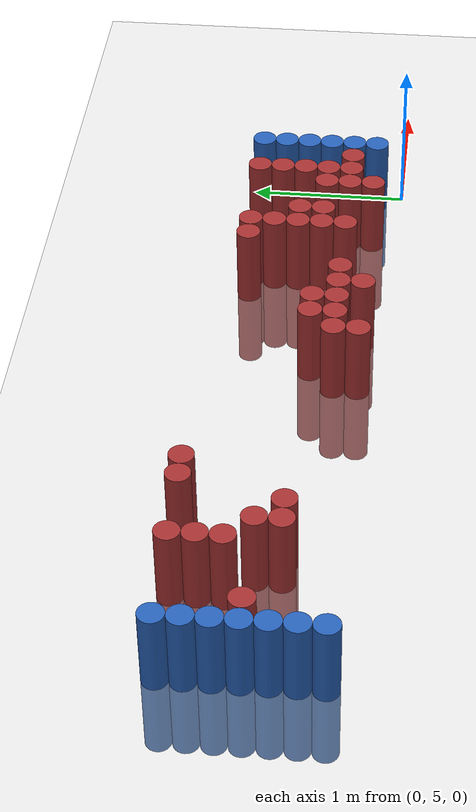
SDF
<sdf version="1.6">
 <world name="default">
  <model name="ground_plane">
   <static>1</static>
   <link name="link">
    <collision name="collision">
     <geometry><plane><normal>0 0 1</normal><size>100 100</size></plane></geometry>
     <surface><friction><ode><mu>100</mu><mu2>50</mu2></ode></friction></surface>
    </collision>
    <visual name="visual">
     <cast_shadows>0</cast_shadows>
     <geometry><plane><normal>0 0 1</normal><size>100 100</size></plane></geometry>
     <material>
      <script><uri>file://media/materials/scripts/gazebo.material</uri><name>Gazebo/Grey</name></script>
     </material>
    </visual>
   </link>
  </model>
  <model name="unit_cylinder_96">
   <static>1</static>
   <pose>-4.425000 5.175000 0.000000 0.000000 0.000000 0.000000</pose>
   <link name="link">
    <inertial>
     <mass>1</mass>
     <inertia><ixx>0.145833</ixx><ixy>0</ixy><ixz>0</ixz><iyy>0.145833</iyy><iyz>0</iyz><izz>0.125</izz></inertia>
    </inertial>
    <collision name="collision">
     <geometry><cylinder><radius>0.075000</radius><length>1</length></cylinder></geometry>
    </collision>
    <visual name="visual">
     <geometry><cylinder><radius>0.075000</radius><length>1</length></cylinder></geometry>
     <material>
      <ambient>0.152000 0.379000 0.720000 1</ambient>
      <diffuse>0.152000 0.379000 0.720000 1</diffuse>
     </material>
     <material>
      <script><name>Gazebo/Grey</name><uri>file://media/materials/scripts/gazebo.material</uri></script>
     </material>
    </visual>
   </link>
  </model>
  <model name="unit_cylinder_97">
   <static>1</static>
   <pose>-4.425000 5.325000 0.000000 0.000000 0.000000 0.000000</pose>
   <link name="link">
    <inertial>
     <mass>1</mass>
     <inertia><ixx>0.145833</ixx><ixy>0</ixy><ixz>0</ixz><iyy>0.145833</iyy><iyz>0</iyz><izz>0.125</izz></inertia>
    </inertial>
    <collision name="collision">
     <geometry><cylinder><radius>0.075000</radius><length>1</length></cylinder></geometry>
    </collision>
    <visual name="visual">
     <geometry><cylinder><radius>0.075000</radius><length>1</length></cylinder></geometry>
     <material>
      <ambient>0.152000 0.379000 0.720000 1</ambient>
      <diffuse>0.152000 0.379000 0.720000 1</diffuse>
     </material>
     <material>
      <script><name>Gazebo/Grey</name><uri>file://media/materials/scripts/gazebo.material</uri></script>
     </material>
    </visual>
   </link>
  </model>
  <model name="unit_cylinder_98">
   <static>1</static>
   <pose>-4.425000 5.475000 0.000000 0.000000 0.000000 0.000000</pose>
   <link name="link">
    <inertial>
     <mass>1</mass>
     <inertia><ixx>0.145833</ixx><ixy>0</ixy><ixz>0</ixz><iyy>0.145833</iyy><iyz>0</iyz><izz>0.125</izz></inertia>
    </inertial>
    <collision name="collision">
     <geometry><cylinder><radius>0.075000</radius><length>1</length></cylinder></geometry>
    </collision>
    <visual name="visual">
     <geometry><cylinder><radius>0.075000</radius><length>1</length></cylinder></geometry>
     <material>
      <ambient>0.152000 0.379000 0.720000 1</ambient>
      <diffuse>0.152000 0.379000 0.720000 1</diffuse>
     </material>
     <material>
      <script><name>Gazebo/Grey</name><uri>file://media/materials/scripts/gazebo.material</uri></script>
     </material>
    </visual>
   </link>
  </model>
  <model name="unit_cylinder_99">
   <static>1</static>
   <pose>-4.425000 5.625000 0.000000 0.000000 0.000000 0.000000</pose>
   <link name="link">
    <inertial>
     <mass>1</mass>
     <inertia><ixx>0.145833</ixx><ixy>0</ixy><ixz>0</ixz><iyy>0.145833</iyy><iyz>0</iyz><izz>0.125</izz></inertia>
    </inertial>
    <collision name="collision">
     <geometry><cylinder><radius>0.075000</radius><length>1</length></cylinder></geometry>
    </collision>
    <visual name="visual">
     <geometry><cylinder><radius>0.075000</radius><length>1</length></cylinder></geometry>
     <material>
      <ambient>0.152000 0.379000 0.720000 1</ambient>
      <diffuse>0.152000 0.379000 0.720000 1</diffuse>
     </material>
     <material>
      <script><name>Gazebo/Grey</name><uri>file://media/materials/scripts/gazebo.material</uri></script>
     </material>
    </visual>
   </link>
  </model>
  <model name="unit_cylinder_100">
   <static>1</static>
   <pose>-4.425000 5.775000 0.000000 0.000000 0.000000 0.000000</pose>
   <link name="link">
    <inertial>
     <mass>1</mass>
     <inertia><ixx>0.145833</ixx><ixy>0</ixy><ixz>0</ixz><iyy>0.145833</iyy><iyz>0</iyz><izz>0.125</izz></inertia>
    </inertial>
    <collision name="collision">
     <geometry><cylinder><radius>0.075000</radius><length>1</length></cylinder></geometry>
    </collision>
    <visual name="visual">
     <geometry><cylinder><radius>0.075000</radius><length>1</length></cylinder></geometry>
     <material>
      <ambient>0.152000 0.379000 0.720000 1</ambient>
      <diffuse>0.152000 0.379000 0.720000 1</diffuse>
     </material>
     <material>
      <script><name>Gazebo/Grey</name><uri>file://media/materials/scripts/gazebo.material</uri></script>
     </material>
    </visual>
   </link>
  </model>
  <model name="unit_cylinder_101">
   <static>1</static>
   <pose>-4.425000 5.925000 0.000000 0.000000 0.000000 0.000000</pose>
   <link name="link">
    <inertial>
     <mass>1</mass>
     <inertia><ixx>0.145833</ixx><ixy>0</ixy><ixz>0</ixz><iyy>0.145833</iyy><iyz>0</iyz><izz>0.125</izz></inertia>
    </inertial>
    <collision name="collision">
     <geometry><cylinder><radius>0.075000</radius><length>1</length></cylinder></geometry>
    </collision>
    <visual name="visual">
     <geometry><cylinder><radius>0.075000</radius><length>1</length></cylinder></geometry>
     <material>
      <ambient>0.152000 0.379000 0.720000 1</ambient>
      <diffuse>0.152000 0.379000 0.720000 1</diffuse>
     </material>
     <material>
      <script><name>Gazebo/Grey</name><uri>file://media/materials/scripts/gazebo.material</uri></script>
     </material>
    </visual>
   </link>
  </model>
  <model name="unit_cylinder_102">
   <static>1</static>
   <pose>-4.425000 6.075000 0.000000 0.000000 0.000000 0.000000</pose>
   <link name="link">
    <inertial>
     <mass>1</mass>
     <inertia><ixx>0.145833</ixx><ixy>0</ixy><ixz>0</ixz><iyy>0.145833</iyy><iyz>0</iyz><izz>0.125</izz></inertia>
    </inertial>
    <collision name="collision">
     <geometry><cylinder><radius>0.075000</radius><length>1</length></cylinder></geometry>
    </collision>
    <visual name="visual">
     <geometry><cylinder><radius>0.075000</radius><length>1</length></cylinder></geometry>
     <material>
      <ambient>0.152000 0.379000 0.720000 1</ambient>
      <diffuse>0.152000 0.379000 0.720000 1</diffuse>
     </material>
     <material>
      <script><name>Gazebo/Grey</name><uri>file://media/materials/scripts/gazebo.material</uri></script>
     </material>
    </visual>
   </link>
  </model>
  <model name="unit_cylinder_126">
   <static>1</static>
   <pose>-4.275000 5.625000 0.000000 0.000000 0.000000 0.000000</pose>
   <link name="link">
    <inertial>
     <mass>1</mass>
     <inertia><ixx>0.145833</ixx><ixy>0</ixy><ixz>0</ixz><iyy>0.145833</iyy><iyz>0</iyz><izz>0.125</izz></inertia>
    </inertial>
    <collision name="collision">
     <geometry><cylinder><radius>0.075000</radius><length>1</length></cylinder></geometry>
    </collision>
    <visual name="visual">
     <geometry><cylinder><radius>0.075000</radius><length>1</length></cylinder></geometry>
     <material>
      <ambient>0.648000 0.192000 0.192000 1</ambient>
      <diffuse>0.648000 0.192000 0.192000 1</diffuse>
     </material>
     <material>
      <script><name>Gazebo/Grey</name><uri>file://media/materials/scripts/gazebo.material</uri></script>
     </material>
    </visual>
   </link>
  </model>
  <model name="unit_cylinder_161">
   <static>1</static>
   <pose>-3.825000 5.775000 0.000000 0.000000 0.000000 0.000000</pose>
   <link name="link">
    <inertial>
     <mass>1</mass>
     <inertia><ixx>0.145833</ixx><ixy>0</ixy><ixz>0</ixz><iyy>0.145833</iyy><iyz>0</iyz><izz>0.125</izz></inertia>
    </inertial>
    <collision name="collision">
     <geometry><cylinder><radius>0.075000</radius><length>1</length></cylinder></geometry>
    </collision>
    <visual name="visual">
     <geometry><cylinder><radius>0.075000</radius><length>1</length></cylinder></geometry>
     <material>
      <ambient>0.648000 0.192000 0.192000 1</ambient>
      <diffuse>0.648000 0.192000 0.192000 1</diffuse>
     </material>
     <material>
      <script><name>Gazebo/Grey</name><uri>file://media/materials/scripts/gazebo.material</uri></script>
     </material>
    </visual>
   </link>
  </model>
  <model name="unit_cylinder_162">
   <static>1</static>
   <pose>-3.825000 5.925000 0.000000 0.000000 0.000000 0.000000</pose>
   <link name="link">
    <inertial>
     <mass>1</mass>
     <inertia><ixx>0.145833</ixx><ixy>0</ixy><ixz>0</ixz><iyy>0.145833</iyy><iyz>0</iyz><izz>0.125</izz></inertia>
    </inertial>
    <collision name="collision">
     <geometry><cylinder><radius>0.075000</radius><length>1</length></cylinder></geometry>
    </collision>
    <visual name="visual">
     <geometry><cylinder><radius>0.075000</radius><length>1</length></cylinder></geometry>
     <material>
      <ambient>0.648000 0.192000 0.192000 1</ambient>
      <diffuse>0.648000 0.192000 0.192000 1</diffuse>
     </material>
     <material>
      <script><name>Gazebo/Grey</name><uri>file://media/materials/scripts/gazebo.material</uri></script>
     </material>
    </visual>
   </link>
  </model>
  <model name="unit_cylinder_163">
   <static>1</static>
   <pose>-3.825000 6.075000 0.000000 0.000000 0.000000 0.000000</pose>
   <link name="link">
    <inertial>
     <mass>1</mass>
     <inertia><ixx>0.145833</ixx><ixy>0</ixy><ixz>0</ixz><iyy>0.145833</iyy><iyz>0</iyz><izz>0.125</izz></inertia>
    </inertial>
    <collision name="collision">
     <geometry><cylinder><radius>0.075000</radius><length>1</length></cylinder></geometry>
    </collision>
    <visual name="visual">
     <geometry><cylinder><radius>0.075000</radius><length>1</length></cylinder></geometry>
     <material>
      <ambient>0.648000 0.192000 0.192000 1</ambient>
      <diffuse>0.648000 0.192000 0.192000 1</diffuse>
     </material>
     <material>
      <script><name>Gazebo/Grey</name><uri>file://media/materials/scripts/gazebo.material</uri></script>
     </material>
    </visual>
   </link>
  </model>
  <model name="unit_cylinder_171">
   <static>1</static>
   <pose>-3.675000 5.475000 0.000000 0.000000 0.000000 0.000000</pose>
   <link name="link">
    <inertial>
     <mass>1</mass>
     <inertia><ixx>0.145833</ixx><ixy>0</ixy><ixz>0</ixz><iyy>0.145833</iyy><iyz>0</iyz><izz>0.125</izz></inertia>
    </inertial>
    <collision name="collision">
     <geometry><cylinder><radius>0.075000</radius><length>1</length></cylinder></geometry>
    </collision>
    <visual name="visual">
     <geometry><cylinder><radius>0.075000</radius><length>1</length></cylinder></geometry>
     <material>
      <ambient>0.648000 0.192000 0.192000 1</ambient>
      <diffuse>0.648000 0.192000 0.192000 1</diffuse>
     </material>
     <material>
      <script><name>Gazebo/Grey</name><uri>file://media/materials/scripts/gazebo.material</uri></script>
     </material>
    </visual>
   </link>
  </model>
  <model name="unit_cylinder_172">
   <static>1</static>
   <pose>-3.675000 5.625000 0.000000 0.000000 0.000000 0.000000</pose>
   <link name="link">
    <inertial>
     <mass>1</mass>
     <inertia><ixx>0.145833</ixx><ixy>0</ixy><ixz>0</ixz><iyy>0.145833</iyy><iyz>0</iyz><izz>0.125</izz></inertia>
    </inertial>
    <collision name="collision">
     <geometry><cylinder><radius>0.075000</radius><length>1</length></cylinder></geometry>
    </collision>
    <visual name="visual">
     <geometry><cylinder><radius>0.075000</radius><length>1</length></cylinder></geometry>
     <material>
      <ambient>0.648000 0.192000 0.192000 1</ambient>
      <diffuse>0.648000 0.192000 0.192000 1</diffuse>
     </material>
     <material>
      <script><name>Gazebo/Grey</name><uri>file://media/materials/scripts/gazebo.material</uri></script>
     </material>
    </visual>
   </link>
  </model>
  <model name="unit_cylinder_177">
   <static>1</static>
   <pose>-3.525000 5.475000 0.000000 0.000000 0.000000 0.000000</pose>
   <link name="link">
    <inertial>
     <mass>1</mass>
     <inertia><ixx>0.145833</ixx><ixy>0</ixy><ixz>0</ixz><iyy>0.145833</iyy><iyz>0</iyz><izz>0.125</izz></inertia>
    </inertial>
    <collision name="collision">
     <geometry><cylinder><radius>0.075000</radius><length>1</length></cylinder></geometry>
    </collision>
    <visual name="visual">
     <geometry><cylinder><radius>0.075000</radius><length>1</length></cylinder></geometry>
     <material>
      <ambient>0.648000 0.192000 0.192000 1</ambient>
      <diffuse>0.648000 0.192000 0.192000 1</diffuse>
     </material>
     <material>
      <script><name>Gazebo/Grey</name><uri>file://media/materials/scripts/gazebo.material</uri></script>
     </material>
    </visual>
   </link>
  </model>
  <model name="unit_cylinder_184">
   <static>1</static>
   <pose>-3.375000 6.075000 0.000000 0.000000 0.000000 0.000000</pose>
   <link name="link">
    <inertial>
     <mass>1</mass>
     <inertia><ixx>0.145833</ixx><ixy>0</ixy><ixz>0</ixz><iyy>0.145833</iyy><iyz>0</iyz><izz>0.125</izz></inertia>
    </inertial>
    <collision name="collision">
     <geometry><cylinder><radius>0.075000</radius><length>1</length></cylinder></geometry>
    </collision>
    <visual name="visual">
     <geometry><cylinder><radius>0.075000</radius><length>1</length></cylinder></geometry>
     <material>
      <ambient>0.648000 0.192000 0.192000 1</ambient>
      <diffuse>0.648000 0.192000 0.192000 1</diffuse>
     </material>
     <material>
      <script><name>Gazebo/Grey</name><uri>file://media/materials/scripts/gazebo.material</uri></script>
     </material>
    </visual>
   </link>
  </model>
  <model name="unit_cylinder_188">
   <static>1</static>
   <pose>-3.225000 6.075000 0.000000 0.000000 0.000000 0.000000</pose>
   <link name="link">
    <inertial>
     <mass>1</mass>
     <inertia><ixx>0.145833</ixx><ixy>0</ixy><ixz>0</ixz><iyy>0.145833</iyy><iyz>0</iyz><izz>0.125</izz></inertia>
    </inertial>
    <collision name="collision">
     <geometry><cylinder><radius>0.075000</radius><length>1</length></cylinder></geometry>
    </collision>
    <visual name="visual">
     <geometry><cylinder><radius>0.075000</radius><length>1</length></cylinder></geometry>
     <material>
      <ambient>0.648000 0.192000 0.192000 1</ambient>
      <diffuse>0.648000 0.192000 0.192000 1</diffuse>
     </material>
     <material>
      <script><name>Gazebo/Grey</name><uri>file://media/materials/scripts/gazebo.material</uri></script>
     </material>
    </visual>
   </link>
  </model>
  <model name="unit_cylinder_211">
   <static>1</static>
   <pose>-2.025000 5.175000 0.000000 0.000000 0.000000 0.000000</pose>
   <link name="link">
    <inertial>
     <mass>1</mass>
     <inertia><ixx>0.145833</ixx><ixy>0</ixy><ixz>0</ixz><iyy>0.145833</iyy><iyz>0</iyz><izz>0.125</izz></inertia>
    </inertial>
    <collision name="collision">
     <geometry><cylinder><radius>0.075000</radius><length>1</length></cylinder></geometry>
    </collision>
    <visual name="visual">
     <geometry><cylinder><radius>0.075000</radius><length>1</length></cylinder></geometry>
     <material>
      <ambient>0.648000 0.192000 0.192000 1</ambient>
      <diffuse>0.648000 0.192000 0.192000 1</diffuse>
     </material>
     <material>
      <script><name>Gazebo/Grey</name><uri>file://media/materials/scripts/gazebo.material</uri></script>
     </material>
    </visual>
   </link>
  </model>
  <model name="unit_cylinder_212">
   <static>1</static>
   <pose>-2.025000 5.325000 0.000000 0.000000 0.000000 0.000000</pose>
   <link name="link">
    <inertial>
     <mass>1</mass>
     <inertia><ixx>0.145833</ixx><ixy>0</ixy><ixz>0</ixz><iyy>0.145833</iyy><iyz>0</iyz><izz>0.125</izz></inertia>
    </inertial>
    <collision name="collision">
     <geometry><cylinder><radius>0.075000</radius><length>1</length></cylinder></geometry>
    </collision>
    <visual name="visual">
     <geometry><cylinder><radius>0.075000</radius><length>1</length></cylinder></geometry>
     <material>
      <ambient>0.648000 0.192000 0.192000 1</ambient>
      <diffuse>0.648000 0.192000 0.192000 1</diffuse>
     </material>
     <material>
      <script><name>Gazebo/Grey</name><uri>file://media/materials/scripts/gazebo.material</uri></script>
     </material>
    </visual>
   </link>
  </model>
  <model name="unit_cylinder_213">
   <static>1</static>
   <pose>-1.875000 5.325000 0.000000 0.000000 0.000000 0.000000</pose>
   <link name="link">
    <inertial>
     <mass>1</mass>
     <inertia><ixx>0.145833</ixx><ixy>0</ixy><ixz>0</ixz><iyy>0.145833</iyy><iyz>0</iyz><izz>0.125</izz></inertia>
    </inertial>
    <collision name="collision">
     <geometry><cylinder><radius>0.075000</radius><length>1</length></cylinder></geometry>
    </collision>
    <visual name="visual">
     <geometry><cylinder><radius>0.075000</radius><length>1</length></cylinder></geometry>
     <material>
      <ambient>0.648000 0.192000 0.192000 1</ambient>
      <diffuse>0.648000 0.192000 0.192000 1</diffuse>
     </material>
     <material>
      <script><name>Gazebo/Grey</name><uri>file://media/materials/scripts/gazebo.material</uri></script>
     </material>
    </visual>
   </link>
  </model>
  <model name="unit_cylinder_214">
   <static>1</static>
   <pose>-1.875000 5.475000 0.000000 0.000000 0.000000 0.000000</pose>
   <link name="link">
    <inertial>
     <mass>1</mass>
     <inertia><ixx>0.145833</ixx><ixy>0</ixy><ixz>0</ixz><iyy>0.145833</iyy><iyz>0</iyz><izz>0.125</izz></inertia>
    </inertial>
    <collision name="collision">
     <geometry><cylinder><radius>0.075000</radius><length>1</length></cylinder></geometry>
    </collision>
    <visual name="visual">
     <geometry><cylinder><radius>0.075000</radius><length>1</length></cylinder></geometry>
     <material>
      <ambient>0.648000 0.192000 0.192000 1</ambient>
      <diffuse>0.648000 0.192000 0.192000 1</diffuse>
     </material>
     <material>
      <script><name>Gazebo/Grey</name><uri>file://media/materials/scripts/gazebo.material</uri></script>
     </material>
    </visual>
   </link>
  </model>
  <model name="unit_cylinder_215">
   <static>1</static>
   <pose>-1.725000 5.325000 0.000000 0.000000 0.000000 0.000000</pose>
   <link name="link">
    <inertial>
     <mass>1</mass>
     <inertia><ixx>0.145833</ixx><ixy>0</ixy><ixz>0</ixz><iyy>0.145833</iyy><iyz>0</iyz><izz>0.125</izz></inertia>
    </inertial>
    <collision name="collision">
     <geometry><cylinder><radius>0.075000</radius><length>1</length></cylinder></geometry>
    </collision>
    <visual name="visual">
     <geometry><cylinder><radius>0.075000</radius><length>1</length></cylinder></geometry>
     <material>
      <ambient>0.648000 0.192000 0.192000 1</ambient>
      <diffuse>0.648000 0.192000 0.192000 1</diffuse>
     </material>
     <material>
      <script><name>Gazebo/Grey</name><uri>file://media/materials/scripts/gazebo.material</uri></script>
     </material>
    </visual>
   </link>
  </model>
  <model name="unit_cylinder_216">
   <static>1</static>
   <pose>-1.725000 5.475000 0.000000 0.000000 0.000000 0.000000</pose>
   <link name="link">
    <inertial>
     <mass>1</mass>
     <inertia><ixx>0.145833</ixx><ixy>0</ixy><ixz>0</ixz><iyy>0.145833</iyy><iyz>0</iyz><izz>0.125</izz></inertia>
    </inertial>
    <collision name="collision">
     <geometry><cylinder><radius>0.075000</radius><length>1</length></cylinder></geometry>
    </collision>
    <visual name="visual">
     <geometry><cylinder><radius>0.075000</radius><length>1</length></cylinder></geometry>
     <material>
      <ambient>0.648000 0.192000 0.192000 1</ambient>
      <diffuse>0.648000 0.192000 0.192000 1</diffuse>
     </material>
     <material>
      <script><name>Gazebo/Grey</name><uri>file://media/materials/scripts/gazebo.material</uri></script>
     </material>
    </visual>
   </link>
  </model>
  <model name="unit_cylinder_218">
   <static>1</static>
   <pose>-1.575000 5.175000 0.000000 0.000000 0.000000 0.000000</pose>
   <link name="link">
    <inertial>
     <mass>1</mass>
     <inertia><ixx>0.145833</ixx><ixy>0</ixy><ixz>0</ixz><iyy>0.145833</iyy><iyz>0</iyz><izz>0.125</izz></inertia>
    </inertial>
    <collision name="collision">
     <geometry><cylinder><radius>0.075000</radius><length>1</length></cylinder></geometry>
    </collision>
    <visual name="visual">
     <geometry><cylinder><radius>0.075000</radius><length>1</length></cylinder></geometry>
     <material>
      <ambient>0.648000 0.192000 0.192000 1</ambient>
      <diffuse>0.648000 0.192000 0.192000 1</diffuse>
     </material>
     <material>
      <script><name>Gazebo/Grey</name><uri>file://media/materials/scripts/gazebo.material</uri></script>
     </material>
    </visual>
   </link>
  </model>
  <model name="unit_cylinder_219">
   <static>1</static>
   <pose>-1.575000 5.325000 0.000000 0.000000 0.000000 0.000000</pose>
   <link name="link">
    <inertial>
     <mass>1</mass>
     <inertia><ixx>0.145833</ixx><ixy>0</ixy><ixz>0</ixz><iyy>0.145833</iyy><iyz>0</iyz><izz>0.125</izz></inertia>
    </inertial>
    <collision name="collision">
     <geometry><cylinder><radius>0.075000</radius><length>1</length></cylinder></geometry>
    </collision>
    <visual name="visual">
     <geometry><cylinder><radius>0.075000</radius><length>1</length></cylinder></geometry>
     <material>
      <ambient>0.648000 0.192000 0.192000 1</ambient>
      <diffuse>0.648000 0.192000 0.192000 1</diffuse>
     </material>
     <material>
      <script><name>Gazebo/Grey</name><uri>file://media/materials/scripts/gazebo.material</uri></script>
     </material>
    </visual>
   </link>
  </model>
  <model name="unit_cylinder_222">
   <static>1</static>
   <pose>-1.425000 5.325000 0.000000 0.000000 0.000000 0.000000</pose>
   <link name="link">
    <inertial>
     <mass>1</mass>
     <inertia><ixx>0.145833</ixx><ixy>0</ixy><ixz>0</ixz><iyy>0.145833</iyy><iyz>0</iyz><izz>0.125</izz></inertia>
    </inertial>
    <collision name="collision">
     <geometry><cylinder><radius>0.075000</radius><length>1</length></cylinder></geometry>
    </collision>
    <visual name="visual">
     <geometry><cylinder><radius>0.075000</radius><length>1</length></cylinder></geometry>
     <material>
      <ambient>0.648000 0.192000 0.192000 1</ambient>
      <diffuse>0.648000 0.192000 0.192000 1</diffuse>
     </material>
     <material>
      <script><name>Gazebo/Grey</name><uri>file://media/materials/scripts/gazebo.material</uri></script>
     </material>
    </visual>
   </link>
  </model>
  <model name="unit_cylinder_237">
   <static>1</static>
   <pose>-1.125000 5.925000 0.000000 0.000000 0.000000 0.000000</pose>
   <link name="link">
    <inertial>
     <mass>1</mass>
     <inertia><ixx>0.145833</ixx><ixy>0</ixy><ixz>0</ixz><iyy>0.145833</iyy><iyz>0</iyz><izz>0.125</izz></inertia>
    </inertial>
    <collision name="collision">
     <geometry><cylinder><radius>0.075000</radius><length>1</length></cylinder></geometry>
    </collision>
    <visual name="visual">
     <geometry><cylinder><radius>0.075000</radius><length>1</length></cylinder></geometry>
     <material>
      <ambient>0.648000 0.192000 0.192000 1</ambient>
      <diffuse>0.648000 0.192000 0.192000 1</diffuse>
     </material>
     <material>
      <script><name>Gazebo/Grey</name><uri>file://media/materials/scripts/gazebo.material</uri></script>
     </material>
    </visual>
   </link>
  </model>
  <model name="unit_cylinder_246">
   <static>1</static>
   <pose>-0.975000 5.325000 0.000000 0.000000 0.000000 0.000000</pose>
   <link name="link">
    <inertial>
     <mass>1</mass>
     <inertia><ixx>0.145833</ixx><ixy>0</ixy><ixz>0</ixz><iyy>0.145833</iyy><iyz>0</iyz><izz>0.125</izz></inertia>
    </inertial>
    <collision name="collision">
     <geometry><cylinder><radius>0.075000</radius><length>1</length></cylinder></geometry>
    </collision>
    <visual name="visual">
     <geometry><cylinder><radius>0.075000</radius><length>1</length></cylinder></geometry>
     <material>
      <ambient>0.648000 0.192000 0.192000 1</ambient>
      <diffuse>0.648000 0.192000 0.192000 1</diffuse>
     </material>
     <material>
      <script><name>Gazebo/Grey</name><uri>file://media/materials/scripts/gazebo.material</uri></script>
     </material>
    </visual>
   </link>
  </model>
  <model name="unit_cylinder_247">
   <static>1</static>
   <pose>-0.975000 5.475000 0.000000 0.000000 0.000000 0.000000</pose>
   <link name="link">
    <inertial>
     <mass>1</mass>
     <inertia><ixx>0.145833</ixx><ixy>0</ixy><ixz>0</ixz><iyy>0.145833</iyy><iyz>0</iyz><izz>0.125</izz></inertia>
    </inertial>
    <collision name="collision">
     <geometry><cylinder><radius>0.075000</radius><length>1</length></cylinder></geometry>
    </collision>
    <visual name="visual">
     <geometry><cylinder><radius>0.075000</radius><length>1</length></cylinder></geometry>
     <material>
      <ambient>0.648000 0.192000 0.192000 1</ambient>
      <diffuse>0.648000 0.192000 0.192000 1</diffuse>
     </material>
     <material>
      <script><name>Gazebo/Grey</name><uri>file://media/materials/scripts/gazebo.material</uri></script>
     </material>
    </visual>
   </link>
  </model>
  <model name="unit_cylinder_248">
   <static>1</static>
   <pose>-0.975000 5.625000 0.000000 0.000000 0.000000 0.000000</pose>
   <link name="link">
    <inertial>
     <mass>1</mass>
     <inertia><ixx>0.145833</ixx><ixy>0</ixy><ixz>0</ixz><iyy>0.145833</iyy><iyz>0</iyz><izz>0.125</izz></inertia>
    </inertial>
    <collision name="collision">
     <geometry><cylinder><radius>0.075000</radius><length>1</length></cylinder></geometry>
    </collision>
    <visual name="visual">
     <geometry><cylinder><radius>0.075000</radius><length>1</length></cylinder></geometry>
     <material>
      <ambient>0.648000 0.192000 0.192000 1</ambient>
      <diffuse>0.648000 0.192000 0.192000 1</diffuse>
     </material>
     <material>
      <script><name>Gazebo/Grey</name><uri>file://media/materials/scripts/gazebo.material</uri></script>
     </material>
    </visual>
   </link>
  </model>
  <model name="unit_cylinder_249">
   <static>1</static>
   <pose>-0.975000 5.775000 0.000000 0.000000 0.000000 0.000000</pose>
   <link name="link">
    <inertial>
     <mass>1</mass>
     <inertia><ixx>0.145833</ixx><ixy>0</ixy><ixz>0</ixz><iyy>0.145833</iyy><iyz>0</iyz><izz>0.125</izz></inertia>
    </inertial>
    <collision name="collision">
     <geometry><cylinder><radius>0.075000</radius><length>1</length></cylinder></geometry>
    </collision>
    <visual name="visual">
     <geometry><cylinder><radius>0.075000</radius><length>1</length></cylinder></geometry>
     <material>
      <ambient>0.648000 0.192000 0.192000 1</ambient>
      <diffuse>0.648000 0.192000 0.192000 1</diffuse>
     </material>
     <material>
      <script><name>Gazebo/Grey</name><uri>file://media/materials/scripts/gazebo.material</uri></script>
     </material>
    </visual>
   </link>
  </model>
  <model name="unit_cylinder_250">
   <static>1</static>
   <pose>-0.975000 5.925000 0.000000 0.000000 0.000000 0.000000</pose>
   <link name="link">
    <inertial>
     <mass>1</mass>
     <inertia><ixx>0.145833</ixx><ixy>0</ixy><ixz>0</ixz><iyy>0.145833</iyy><iyz>0</iyz><izz>0.125</izz></inertia>
    </inertial>
    <collision name="collision">
     <geometry><cylinder><radius>0.075000</radius><length>1</length></cylinder></geometry>
    </collision>
    <visual name="visual">
     <geometry><cylinder><radius>0.075000</radius><length>1</length></cylinder></geometry>
     <material>
      <ambient>0.648000 0.192000 0.192000 1</ambient>
      <diffuse>0.648000 0.192000 0.192000 1</diffuse>
     </material>
     <material>
      <script><name>Gazebo/Grey</name><uri>file://media/materials/scripts/gazebo.material</uri></script>
     </material>
    </visual>
   </link>
  </model>
  <model name="unit_cylinder_255">
   <static>1</static>
   <pose>-0.825000 5.475000 0.000000 0.000000 0.000000 0.000000</pose>
   <link name="link">
    <inertial>
     <mass>1</mass>
     <inertia><ixx>0.145833</ixx><ixy>0</ixy><ixz>0</ixz><iyy>0.145833</iyy><iyz>0</iyz><izz>0.125</izz></inertia>
    </inertial>
    <collision name="collision">
     <geometry><cylinder><radius>0.075000</radius><length>1</length></cylinder></geometry>
    </collision>
    <visual name="visual">
     <geometry><cylinder><radius>0.075000</radius><length>1</length></cylinder></geometry>
     <material>
      <ambient>0.648000 0.192000 0.192000 1</ambient>
      <diffuse>0.648000 0.192000 0.192000 1</diffuse>
     </material>
     <material>
      <script><name>Gazebo/Grey</name><uri>file://media/materials/scripts/gazebo.material</uri></script>
     </material>
    </visual>
   </link>
  </model>
  <model name="unit_cylinder_256">
   <static>1</static>
   <pose>-0.825000 5.625000 0.000000 0.000000 0.000000 0.000000</pose>
   <link name="link">
    <inertial>
     <mass>1</mass>
     <inertia><ixx>0.145833</ixx><ixy>0</ixy><ixz>0</ixz><iyy>0.145833</iyy><iyz>0</iyz><izz>0.125</izz></inertia>
    </inertial>
    <collision name="collision">
     <geometry><cylinder><radius>0.075000</radius><length>1</length></cylinder></geometry>
    </collision>
    <visual name="visual">
     <geometry><cylinder><radius>0.075000</radius><length>1</length></cylinder></geometry>
     <material>
      <ambient>0.648000 0.192000 0.192000 1</ambient>
      <diffuse>0.648000 0.192000 0.192000 1</diffuse>
     </material>
     <material>
      <script><name>Gazebo/Grey</name><uri>file://media/materials/scripts/gazebo.material</uri></script>
     </material>
    </visual>
   </link>
  </model>
  <model name="unit_cylinder_274">
   <static>1</static>
   <pose>-0.525000 5.175000 0.000000 0.000000 0.000000 0.000000</pose>
   <link name="link">
    <inertial>
     <mass>1</mass>
     <inertia><ixx>0.145833</ixx><ixy>0</ixy><ixz>0</ixz><iyy>0.145833</iyy><iyz>0</iyz><izz>0.125</izz></inertia>
    </inertial>
    <collision name="collision">
     <geometry><cylinder><radius>0.075000</radius><length>1</length></cylinder></geometry>
    </collision>
    <visual name="visual">
     <geometry><cylinder><radius>0.075000</radius><length>1</length></cylinder></geometry>
     <material>
      <ambient>0.648000 0.192000 0.192000 1</ambient>
      <diffuse>0.648000 0.192000 0.192000 1</diffuse>
     </material>
     <material>
      <script><name>Gazebo/Grey</name><uri>file://media/materials/scripts/gazebo.material</uri></script>
     </material>
    </visual>
   </link>
  </model>
  <model name="unit_cylinder_275">
   <static>1</static>
   <pose>-0.525000 5.325000 0.000000 0.000000 0.000000 0.000000</pose>
   <link name="link">
    <inertial>
     <mass>1</mass>
     <inertia><ixx>0.145833</ixx><ixy>0</ixy><ixz>0</ixz><iyy>0.145833</iyy><iyz>0</iyz><izz>0.125</izz></inertia>
    </inertial>
    <collision name="collision">
     <geometry><cylinder><radius>0.075000</radius><length>1</length></cylinder></geometry>
    </collision>
    <visual name="visual">
     <geometry><cylinder><radius>0.075000</radius><length>1</length></cylinder></geometry>
     <material>
      <ambient>0.648000 0.192000 0.192000 1</ambient>
      <diffuse>0.648000 0.192000 0.192000 1</diffuse>
     </material>
     <material>
      <script><name>Gazebo/Grey</name><uri>file://media/materials/scripts/gazebo.material</uri></script>
     </material>
    </visual>
   </link>
  </model>
  <model name="unit_cylinder_276">
   <static>1</static>
   <pose>-0.525000 5.475000 0.000000 0.000000 0.000000 0.000000</pose>
   <link name="link">
    <inertial>
     <mass>1</mass>
     <inertia><ixx>0.145833</ixx><ixy>0</ixy><ixz>0</ixz><iyy>0.145833</iyy><iyz>0</iyz><izz>0.125</izz></inertia>
    </inertial>
    <collision name="collision">
     <geometry><cylinder><radius>0.075000</radius><length>1</length></cylinder></geometry>
    </collision>
    <visual name="visual">
     <geometry><cylinder><radius>0.075000</radius><length>1</length></cylinder></geometry>
     <material>
      <ambient>0.648000 0.192000 0.192000 1</ambient>
      <diffuse>0.648000 0.192000 0.192000 1</diffuse>
     </material>
     <material>
      <script><name>Gazebo/Grey</name><uri>file://media/materials/scripts/gazebo.material</uri></script>
     </material>
    </visual>
   </link>
  </model>
  <model name="unit_cylinder_286">
   <static>1</static>
   <pose>-0.375000 5.325000 0.000000 0.000000 0.000000 0.000000</pose>
   <link name="link">
    <inertial>
     <mass>1</mass>
     <inertia><ixx>0.145833</ixx><ixy>0</ixy><ixz>0</ixz><iyy>0.145833</iyy><iyz>0</iyz><izz>0.125</izz></inertia>
    </inertial>
    <collision name="collision">
     <geometry><cylinder><radius>0.075000</radius><length>1</length></cylinder></geometry>
    </collision>
    <visual name="visual">
     <geometry><cylinder><radius>0.075000</radius><length>1</length></cylinder></geometry>
     <material>
      <ambient>0.648000 0.192000 0.192000 1</ambient>
      <diffuse>0.648000 0.192000 0.192000 1</diffuse>
     </material>
     <material>
      <script><name>Gazebo/Grey</name><uri>file://media/materials/scripts/gazebo.material</uri></script>
     </material>
    </visual>
   </link>
  </model>
  <model name="unit_cylinder_287">
   <static>1</static>
   <pose>-0.375000 5.475000 0.000000 0.000000 0.000000 0.000000</pose>
   <link name="link">
    <inertial>
     <mass>1</mass>
     <inertia><ixx>0.145833</ixx><ixy>0</ixy><ixz>0</ixz><iyy>0.145833</iyy><iyz>0</iyz><izz>0.125</izz></inertia>
    </inertial>
    <collision name="collision">
     <geometry><cylinder><radius>0.075000</radius><length>1</length></cylinder></geometry>
    </collision>
    <visual name="visual">
     <geometry><cylinder><radius>0.075000</radius><length>1</length></cylinder></geometry>
     <material>
      <ambient>0.648000 0.192000 0.192000 1</ambient>
      <diffuse>0.648000 0.192000 0.192000 1</diffuse>
     </material>
     <material>
      <script><name>Gazebo/Grey</name><uri>file://media/materials/scripts/gazebo.material</uri></script>
     </material>
    </visual>
   </link>
  </model>
  <model name="unit_cylinder_288">
   <static>1</static>
   <pose>-0.375000 5.625000 0.000000 0.000000 0.000000 0.000000</pose>
   <link name="link">
    <inertial>
     <mass>1</mass>
     <inertia><ixx>0.145833</ixx><ixy>0</ixy><ixz>0</ixz><iyy>0.145833</iyy><iyz>0</iyz><izz>0.125</izz></inertia>
    </inertial>
    <collision name="collision">
     <geometry><cylinder><radius>0.075000</radius><length>1</length></cylinder></geometry>
    </collision>
    <visual name="visual">
     <geometry><cylinder><radius>0.075000</radius><length>1</length></cylinder></geometry>
     <material>
      <ambient>0.648000 0.192000 0.192000 1</ambient>
      <diffuse>0.648000 0.192000 0.192000 1</diffuse>
     </material>
     <material>
      <script><name>Gazebo/Grey</name><uri>file://media/materials/scripts/gazebo.material</uri></script>
     </material>
    </visual>
   </link>
  </model>
  <model name="unit_cylinder_289">
   <static>1</static>
   <pose>-0.375000 5.775000 0.000000 0.000000 0.000000 0.000000</pose>
   <link name="link">
    <inertial>
     <mass>1</mass>
     <inertia><ixx>0.145833</ixx><ixy>0</ixy><ixz>0</ixz><iyy>0.145833</iyy><iyz>0</iyz><izz>0.125</izz></inertia>
    </inertial>
    <collision name="collision">
     <geometry><cylinder><radius>0.075000</radius><length>1</length></cylinder></geometry>
    </collision>
    <visual name="visual">
     <geometry><cylinder><radius>0.075000</radius><length>1</length></cylinder></geometry>
     <material>
      <ambient>0.648000 0.192000 0.192000 1</ambient>
      <diffuse>0.648000 0.192000 0.192000 1</diffuse>
     </material>
     <material>
      <script><name>Gazebo/Grey</name><uri>file://media/materials/scripts/gazebo.material</uri></script>
     </material>
    </visual>
   </link>
  </model>
  <model name="unit_cylinder_290">
   <static>1</static>
   <pose>-0.375000 5.925000 0.000000 0.000000 0.000000 0.000000</pose>
   <link name="link">
    <inertial>
     <mass>1</mass>
     <inertia><ixx>0.145833</ixx><ixy>0</ixy><ixz>0</ixz><iyy>0.145833</iyy><iyz>0</iyz><izz>0.125</izz></inertia>
    </inertial>
    <collision name="collision">
     <geometry><cylinder><radius>0.075000</radius><length>1</length></cylinder></geometry>
    </collision>
    <visual name="visual">
     <geometry><cylinder><radius>0.075000</radius><length>1</length></cylinder></geometry>
     <material>
      <ambient>0.648000 0.192000 0.192000 1</ambient>
      <diffuse>0.648000 0.192000 0.192000 1</diffuse>
     </material>
     <material>
      <script><name>Gazebo/Grey</name><uri>file://media/materials/scripts/gazebo.material</uri></script>
     </material>
    </visual>
   </link>
  </model>
  <model name="unit_cylinder_300">
   <static>1</static>
   <pose>-0.225000 5.325000 0.000000 0.000000 0.000000 0.000000</pose>
   <link name="link">
    <inertial>
     <mass>1</mass>
     <inertia><ixx>0.145833</ixx><ixy>0</ixy><ixz>0</ixz><iyy>0.145833</iyy><iyz>0</iyz><izz>0.125</izz></inertia>
    </inertial>
    <collision name="collision">
     <geometry><cylinder><radius>0.075000</radius><length>1</length></cylinder></geometry>
    </collision>
    <visual name="visual">
     <geometry><cylinder><radius>0.075000</radius><length>1</length></cylinder></geometry>
     <material>
      <ambient>0.648000 0.192000 0.192000 1</ambient>
      <diffuse>0.648000 0.192000 0.192000 1</diffuse>
     </material>
     <material>
      <script><name>Gazebo/Grey</name><uri>file://media/materials/scripts/gazebo.material</uri></script>
     </material>
    </visual>
   </link>
  </model>
  <model name="unit_cylinder_306">
   <static>1</static>
   <pose>-0.075000 5.175000 0.000000 0.000000 0.000000 0.000000</pose>
   <link name="link">
    <inertial>
     <mass>1</mass>
     <inertia><ixx>0.145833</ixx><ixy>0</ixy><ixz>0</ixz><iyy>0.145833</iyy><iyz>0</iyz><izz>0.125</izz></inertia>
    </inertial>
    <collision name="collision">
     <geometry><cylinder><radius>0.075000</radius><length>1</length></cylinder></geometry>
    </collision>
    <visual name="visual">
     <geometry><cylinder><radius>0.075000</radius><length>1</length></cylinder></geometry>
     <material>
      <ambient>0.152000 0.379000 0.720000 1</ambient>
      <diffuse>0.152000 0.379000 0.720000 1</diffuse>
     </material>
     <material>
      <script><name>Gazebo/Grey</name><uri>file://media/materials/scripts/gazebo.material</uri></script>
     </material>
    </visual>
   </link>
  </model>
  <model name="unit_cylinder_307">
   <static>1</static>
   <pose>-0.075000 5.325000 0.000000 0.000000 0.000000 0.000000</pose>
   <link name="link">
    <inertial>
     <mass>1</mass>
     <inertia><ixx>0.145833</ixx><ixy>0</ixy><ixz>0</ixz><iyy>0.145833</iyy><iyz>0</iyz><izz>0.125</izz></inertia>
    </inertial>
    <collision name="collision">
     <geometry><cylinder><radius>0.075000</radius><length>1</length></cylinder></geometry>
    </collision>
    <visual name="visual">
     <geometry><cylinder><radius>0.075000</radius><length>1</length></cylinder></geometry>
     <material>
      <ambient>0.152000 0.379000 0.720000 1</ambient>
      <diffuse>0.152000 0.379000 0.720000 1</diffuse>
     </material>
     <material>
      <script><name>Gazebo/Grey</name><uri>file://media/materials/scripts/gazebo.material</uri></script>
     </material>
    </visual>
   </link>
  </model>
  <model name="unit_cylinder_308">
   <static>1</static>
   <pose>-0.075000 5.475000 0.000000 0.000000 0.000000 0.000000</pose>
   <link name="link">
    <inertial>
     <mass>1</mass>
     <inertia><ixx>0.145833</ixx><ixy>0</ixy><ixz>0</ixz><iyy>0.145833</iyy><iyz>0</iyz><izz>0.125</izz></inertia>
    </inertial>
    <collision name="collision">
     <geometry><cylinder><radius>0.075000</radius><length>1</length></cylinder></geometry>
    </collision>
    <visual name="visual">
     <geometry><cylinder><radius>0.075000</radius><length>1</length></cylinder></geometry>
     <material>
      <ambient>0.152000 0.379000 0.720000 1</ambient>
      <diffuse>0.152000 0.379000 0.720000 1</diffuse>
     </material>
     <material>
      <script><name>Gazebo/Grey</name><uri>file://media/materials/scripts/gazebo.material</uri></script>
     </material>
    </visual>
   </link>
  </model>
  <model name="unit_cylinder_309">
   <static>1</static>
   <pose>-0.075000 5.625000 0.000000 0.000000 0.000000 0.000000</pose>
   <link name="link">
    <inertial>
     <mass>1</mass>
     <inertia><ixx>0.145833</ixx><ixy>0</ixy><ixz>0</ixz><iyy>0.145833</iyy><iyz>0</iyz><izz>0.125</izz></inertia>
    </inertial>
    <collision name="collision">
     <geometry><cylinder><radius>0.075000</radius><length>1</length></cylinder></geometry>
    </collision>
    <visual name="visual">
     <geometry><cylinder><radius>0.075000</radius><length>1</length></cylinder></geometry>
     <material>
      <ambient>0.152000 0.379000 0.720000 1</ambient>
      <diffuse>0.152000 0.379000 0.720000 1</diffuse>
     </material>
     <material>
      <script><name>Gazebo/Grey</name><uri>file://media/materials/scripts/gazebo.material</uri></script>
     </material>
    </visual>
   </link>
  </model>
  <model name="unit_cylinder_310">
   <static>1</static>
   <pose>-0.075000 5.775000 0.000000 0.000000 0.000000 0.000000</pose>
   <link name="link">
    <inertial>
     <mass>1</mass>
     <inertia><ixx>0.145833</ixx><ixy>0</ixy><ixz>0</ixz><iyy>0.145833</iyy><iyz>0</iyz><izz>0.125</izz></inertia>
    </inertial>
    <collision name="collision">
     <geometry><cylinder><radius>0.075000</radius><length>1</length></cylinder></geometry>
    </collision>
    <visual name="visual">
     <geometry><cylinder><radius>0.075000</radius><length>1</length></cylinder></geometry>
     <material>
      <ambient>0.152000 0.379000 0.720000 1</ambient>
      <diffuse>0.152000 0.379000 0.720000 1</diffuse>
     </material>
     <material>
      <script><name>Gazebo/Grey</name><uri>file://media/materials/scripts/gazebo.material</uri></script>
     </material>
    </visual>
   </link>
  </model>
  <model name="unit_cylinder_311">
   <static>1</static>
   <pose>-0.075000 5.925000 0.000000 0.000000 0.000000 0.000000</pose>
   <link name="link">
    <inertial>
     <mass>1</mass>
     <inertia><ixx>0.145833</ixx><ixy>0</ixy><ixz>0</ixz><iyy>0.145833</iyy><iyz>0</iyz><izz>0.125</izz></inertia>
    </inertial>
    <collision name="collision">
     <geometry><cylinder><radius>0.075000</radius><length>1</length></cylinder></geometry>
    </collision>
    <visual name="visual">
     <geometry><cylinder><radius>0.075000</radius><length>1</length></cylinder></geometry>
     <material>
      <ambient>0.152000 0.379000 0.720000 1</ambient>
      <diffuse>0.152000 0.379000 0.720000 1</diffuse>
     </material>
     <material>
      <script><name>Gazebo/Grey</name><uri>file://media/materials/scripts/gazebo.material</uri></script>
     </material>
    </visual>
   </link>
  </model>
 </world>
</sdf>
